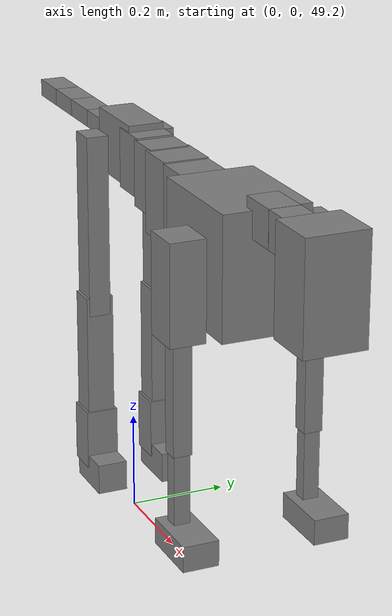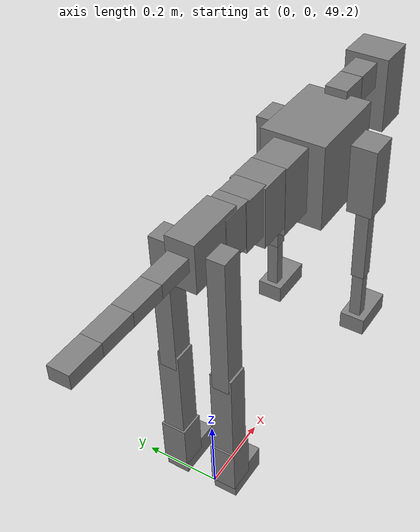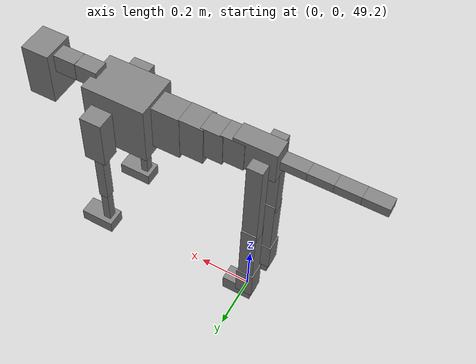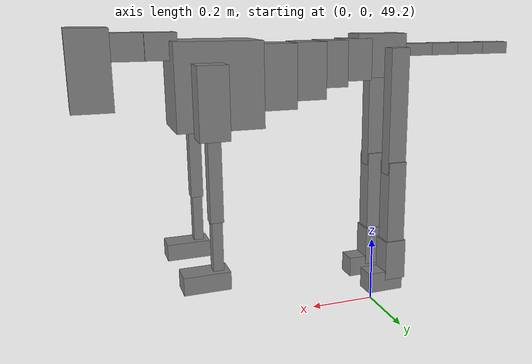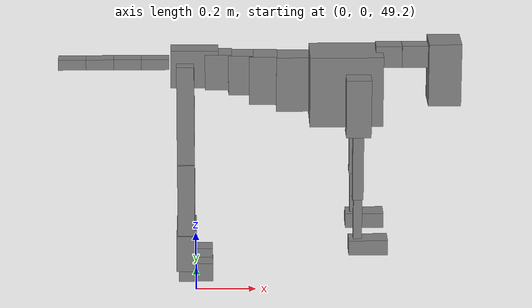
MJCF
<mujoco model="dog">

    <default>
        <joint armature="0.02" stiffness="1" damping="0.2" limited="true"/>
        <geom condim="3" friction="1 0.05 0.05" margin="0.01"/>
        <motor ctrllimited="true" ctrlrange="-1.0 1.0" forcelimited="true" gear="50"/>
    </default>

    <compiler inertiafromgeom="true" angle="radian"/>

    <option timestep="0.016" iterations="50" tolerance="1e-10" solver="Newton" jacobian="dense" cone="pyramidal"/>

    <size nconmax="20000" njmax="60000" nstack="5000000"/>
    <visual>
        <map force="0.1" zfar="30"/>
        <rgba haze="0.15 0.25 0.35 1"/>
        <quality shadowsize="2048"/>
        <global offwidth="800" offheight="800"/>
    </visual>

    <asset>
        <texture type="skybox" builtin="gradient" rgb1="0.3 0.5 0.7" rgb2="0 0 0" width="512" height="512"/>
        <texture name="texplane" type="2d" builtin="checker" rgb1=".2 .3 .4" rgb2=".1 0.15 0.2" width="512" height="512"
                 mark="cross" markrgb=".8 .8 .8"/>
        <texture name="texgeom" type="cube" builtin="flat" mark="cross" width="127" height="1278" rgb1="0.8 0.6 0.4"
                 rgb2="0.8 0.6 0.4" markrgb="1 1 1" random="0.01"/>

        <material name="matplane" reflectance="0.3" texture="texplane" texrepeat="1 1" texuniform="true"/>
        <material name="matgeom" texture="texgeom" texuniform="true" rgba="0.8 0.6 .4 1"/>
    </asset>

    <worldbody>
        <geom name="floor" pos="0 0 0" size="0 0 .25" type="plane" material="matplane" condim="3"/>

        <light directional="false" diffuse=".2 .2 .2" specular="0 0 0" pos="0 0 5" dir="0 0 -1" castshadow="false"/>
        <light mode="targetbodycom" target="torso" directional="false" diffuse=".8 .8 .8" specular="0.3 0.3 0.3"
               pos="0 0 4.0" dir="0 0 -1"/>

        <body name="root" pos="0 0 50">
            <freejoint name="root_1"/>
            <geom type="box" pos="0 0 -0.02" size="0.0774  0.0358  0.063" density="2030"/>

            <body name="spine1" pos="0.054 0 0">
                <joint name="spine1_y" axis="0 1 0" range="0 0.7" limited="true"/>
                <geom type="box" pos="0.02375 0 -0.03" size="0.04375  0.0375  0.05985" density="2030"/>

                <body name="spine2" pos="0.0612 0 0">
                    <joint name="spine2_y" axis="0 1 0" range="-0.15 0.15" limited="true"/>
                    <geom type="box" pos="0.03555  0  -0.04" size="0.04055  0.039  0.06615" density="2030"/>

                    <body name="spine3" pos="0.0730 0 0">
                        <joint name="spine3_y" axis="0 1 0" range="-0.15 0.15" limited="true"/>
                        <geom type="box" pos="0.03555  0  -0.057" size="0.04555  0.0445  0.081" density="2030"/>

                        <body name="spine4" pos="0.0780 0 0">
                            <joint name="spine4_y" axis="0 1 0" range="-0.15 0.15" limited="true"/>
                            <geom type="box" pos="0.05265  0  -0.07" size="0.05265  0.045  0.09135" density="2030"/>

                            <body name="torso" pos="0.1082 0 0">
                                <joint name="torso_y" axis="0 1 0" range="-0.15 0.15" limited="true"/>
                                <geom type="box" pos="0.11925  0  -0.085" size="0.11925  0.085  0.11745"
                                      density="2030"/>

                                <body name="neck1" pos="0.2160  0   0.0180">
                                    <joint name="neck1_y" axis="0 1 0" range="-1.2  -1" limited="true"/>
                                    <geom type="box" pos="0.0423  0  0" size="0.0423  0.03  0.036" density="2325"/>

                                    <body name="neck2" pos="0.0853  0  0">
                                        <joint name="neck2_y" axis="0 1 0" range="0.1  0" limited="true"/>
                                        <geom type="box" pos="0.0423  0  0" size="0.0423  0.03  0.036" density="2325"/>

                                        <body name="head" pos="0.0853  0  0">
                                            <joint name="head_y" axis="0 1 0" range="-0.3  -0.2" limited="true"/>
                                            <geom type="box" pos="0.0531  0  -0.055" size="0.0531  0.06  0.1044"
                                                  density="4030"/>

                                        </body>
                                    </body>
                                </body>

                                <body name="front_shoulder" pos="0.156  0   -0.0480">
                                    <joint name="front_shoulder_y" axis="0 1 0" range="-1 1.5" limited="true"/>
                                    <geom type="box" pos="0 0.13 -0.0697" size="0.0405  0.0346  0.0964" density="1158"/>
                                    <geom type="box" pos="0 -0.13 -0.0697" size="0.0405  0.0346  0.0964"
                                          density="1158"/>

                                    <body name="front_elbow" pos="0  0  -0.1394">
                                        <joint name="front_elbow_y" axis="0 1 0" range="-2 0" limited="true"/>
                                        <geom type="box" pos="0 0.13 -0.1229" size="0.0178  0.0182  0.1229"
                                              density="1081"/>
                                        <geom type="box" pos="0 -0.13 -0.1229" size="0.0178  0.0182  0.1229"
                                              density="1081"/>

                                        <body name="front_wrist" pos="0  0  -0.2458">
                                            <joint name="front_wrist_y" axis="0 1 0" range="-0.2 0" limited="true"/>
                                            <geom type="box" pos="0 0.13 -0.0754" size="0.0142  0.0157  0.0885"
                                                  density="1664"/>
                                            <geom type="box" pos="0 -0.13 -0.0754" size="0.0142  0.0157  0.0885"
                                                  density="1664"/>

                                            <body name="front_finger_end" pos="0  0  -0.1507">
                                                <joint name="front_finger_y" axis="0 1 0" range="-0.4 1"
                                                       limited="true"/>
                                                <geom type="box" pos="0.0348  0.13  -0.0100"
                                                      size="0.0637  0.0348  0.0250" density="1515"/>
                                                <geom type="box" pos="0.0348  -0.13  -0.0100"
                                                      size="0.0637  0.0348  0.0250" density="1515"/>

                                            </body>

                                        </body>
                                    </body>
                                </body>

                            </body>
                        </body>
                    </body>
                </body>
            </body>

            <body name="back_hip" pos="-0.03 0 -0.018">
                <joint name="back_hip_y" axis="0 1 0" range="-1.5 0.3" limited="true"/>
                <geom type="box" pos="0 0.07 -0.1633" size="0.0284  0.0222  0.1861" density="1154"/>
                <geom type="box" pos="0 -0.07 -0.1633" size="0.0284  0.0222  0.1861" density="1154"/>

                <body name="back_knee" pos="0  0  -0.3266">
                    <joint name="back_knee_y" axis="0 1 0" range="0 2.8" limited="true"/>
                    <geom type="box" pos="0 0.07 -0.1206" size="0.0282  0.0278  0.1361" density="1227"/>
                    <geom type="box" pos="0 -0.07 -0.1206" size="0.0282  0.0278  0.1361" density="1227"/>

                    <body name="back_ankle" pos="0  0  -0.2411">
                        <joint name="back_ankle_y" axis="0 1 0" range="-2.2 0" limited="true"/>
                        <geom type="box" pos="0 0.07 -0.0499" size="0.0326  0.0326  0.0611" density="1284"/>
                        <geom type="box" pos="0 -0.07 -0.0499" size="0.0326  0.0326  0.0611" density="1284"/>

                        <body name="back_toe_end" pos="0  0  -0.0998">
                            <joint name="back_toe_y" axis="0 1 0" range="-0.4 1" limited="true"/>
                            <geom type="box" pos="0.0306  0.07  -0.0161" size="0.0560  0.0306  0.0311" density="1515"/>
                            <geom type="box" pos="0.0306  -0.07  -0.0161" size="0.0560  0.0306  0.0311" density="1515"/>

                        </body>
                    </body>
                </body>
            </body>

            <body name="tail1" pos="-0.074 0 -0.006">
                <joint name="tail1_y" axis="0 1 0" range="-0.2 0.2" limited="true"/>
                <geom type="box" pos="-0.0536  0  0" size="0.045  0.025  0.0175" density="1587"/>

                <body name="tail2" pos="-0.09 0 0">
                    <joint name="tail2_y" axis="0 1 0" range="-0.2 0.2" limited="true"/>
                    <geom type="box" pos="-0.0536  0  0" size="0.045  0.025  0.0175" density="1587"/>

                    <body name="tail3" pos="-0.09 0 0">
                        <joint name="tail3_y" axis="0 1 0" range="-0.2 0.2" limited="true"/>
                        <geom type="box" pos="-0.0536  0  0" size="0.045  0.025  0.0175" density="1587"/>

                        <body name="tail4" pos="-0.09 0 0">
                            <joint name="tail4_y" axis="0 1 0" range="-0.2 0.2" limited="true"/>
                            <geom type="box" pos="-0.0536  0  0" size="0.045  0.025  0.0175" density="1587"/>

                        </body>
                    </body>
                </body>
            </body>
        </body>
    </worldbody>

    <actuator>
        <motor joint="spine1_y" forcerange="-150 150     "/>
        <motor joint="spine2_y" forcerange="-150 150     "/>
        <motor joint="spine3_y" forcerange="-150 150     "/>
        <motor joint="spine4_y" forcerange="-150 150     "/>
        <motor joint="torso_y" forcerange="-150 150     "/>
        <motor joint="neck1_y" forcerange="-100 100       "/>
        <motor joint="neck2_y" forcerange="-100 100       "/>
        <motor joint="head_y" forcerange="-150 150       "/>
        <motor joint="front_shoulder_y" forcerange="-189.26 141.58"/>
        <motor joint="front_elbow_y" forcerange="-100.88 131.32"/>
        <motor joint="front_wrist_y" forcerange="-63.10 62.84"/>
        <motor joint="front_finger_y" forcerange="-81.02 64.33"/>
        <motor joint="back_hip_y" forcerange="-284.05 212.60"/>
        <motor joint="back_knee_y" forcerange="-243.96 360.14"/>
        <motor joint="back_angle_y" forcerange="-221.25 200.75"/>
        <motor joint="back_toe_y" forcerange="-62.68 101.82"/>
        <motor joint="tail1_y" forcerange="-50 50     "/>
        <motor joint="tail2_y" forcerange="-50 50     "/>
        <motor joint="tail3_y" forcerange="-50 50     "/>
        <motor joint="tail4_y" forcerange="-50 50     "/>
    </actuator>
</mujoco>
